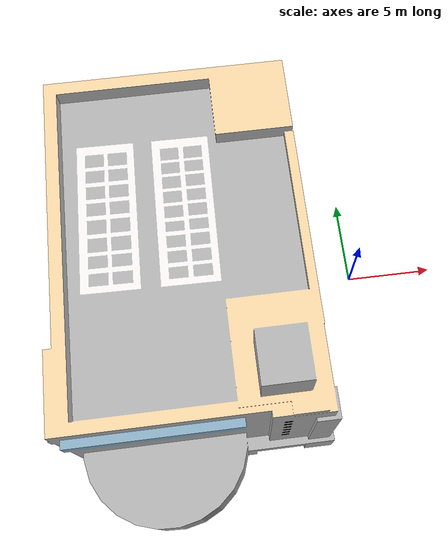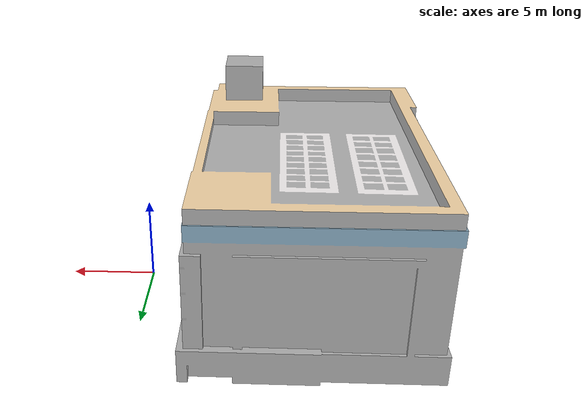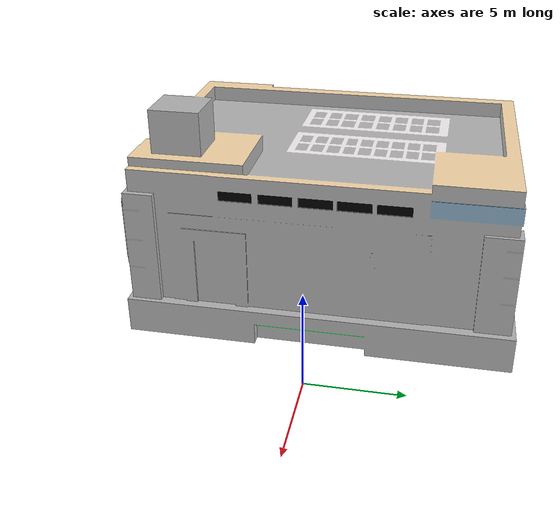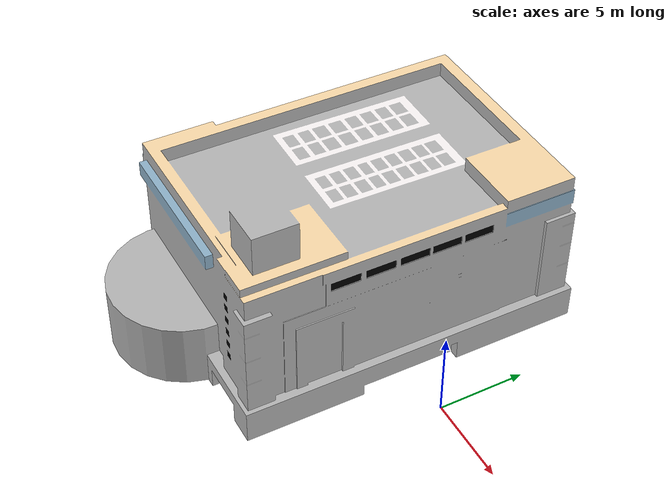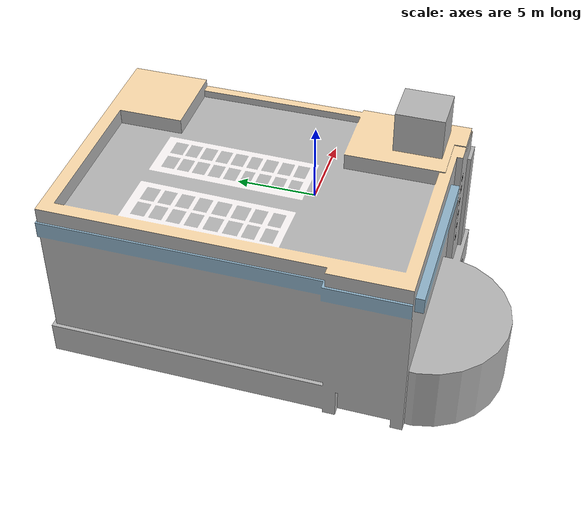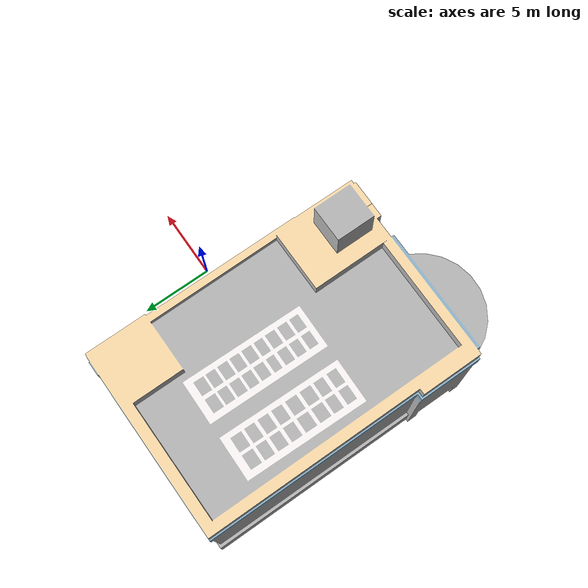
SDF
<?xml version="1.0" ?>
<sdf version="1.5">
  <world name="default">

    <plugin name="voxblox_ground_truth_plugin" filename="libvoxblox_ground_truth_plugin.so"/>
    <gui>
      <camera name="user_camera">
        <pose>80 -54.7 22.5 0 0.25 2.53</pose>
      </camera>
    </gui>
    <scene>
      <sky>
        <clouds>
          <speed>4</speed>
        </clouds>
      </sky>
      <ambient>0.9 0.9 0.9 1</ambient>
      <background>0.7 0.7 0.7 1</background>
      <shadows>0</shadows>
    </scene>

    <physics name='default_physics' default='0' type='ode'>
      <gravity>0 0 -9.8066</gravity>
      <ode>
        <solver>
          <type>quick</type>
          <iters>50</iters>
          <sor>1.3</sor>
          <use_dynamic_moi_rescaling>0</use_dynamic_moi_rescaling>
        </solver>
        <constraints>
          <cfm>0</cfm>
          <erp>0.2</erp>
          <contact_max_correcting_vel>100</contact_max_correcting_vel>
          <contact_surface_layer>0.001</contact_surface_layer>
        </constraints>
      </ode>
      <max_step_size>0.004</max_step_size>
      <real_time_factor>1</real_time_factor>
      <real_time_update_rate>250</real_time_update_rate>
      <magnetic_field>6.0e-6 2.3e-5 -4.2e-5</magnetic_field>
    </physics>

    <!-- A global light source -->
    <include>
      <uri>model://sun_3</uri>
    </include>
    <include>
      <uri>model://sun_4</uri>
    </include>

    <include>
      <static>true</static>
      <pose>-10 0 0 0 0 0</pose>
      <uri>model://emart</uri>
    </include>

  </world>
</sdf>

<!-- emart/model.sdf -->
<sdf version='1.6'>
  <model name='emart'>
    <link name='emart_link'>
      <pose frame=''>0 0 0 0 0 0</pose>
      <inertial>
        <pose frame=''>0 0 0 0 -0 0</pose>
        <mass>1.0</mass>
      </inertial>
      <!-- real size : 120 * 68 * 60 -->
      <collision name='emart_col'>
        <pose frame=''>0 0 0 0 -0 0</pose>
        <geometry>
          <mesh>
            <scale>0.2 0.2 0.2</scale>
            <uri>model://emart/emart.stl</uri>
          </mesh>
        </geometry>
      </collision>
      <visual name='emart_vis'>
        <pose frame=''>0 0 0 0 -0 0</pose>
        <geometry>
          <mesh>
            <scale>0.2 0.2 0.2</scale>
            <uri>model://emart/emart.dae</uri>
          </mesh>
        </geometry>
      </visual>
    </link>
  </model>
</sdf>
